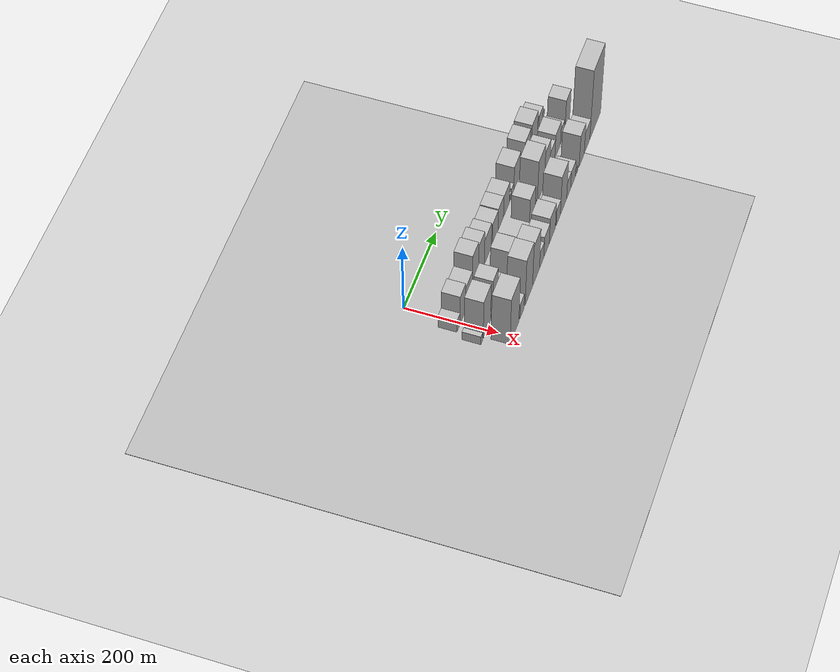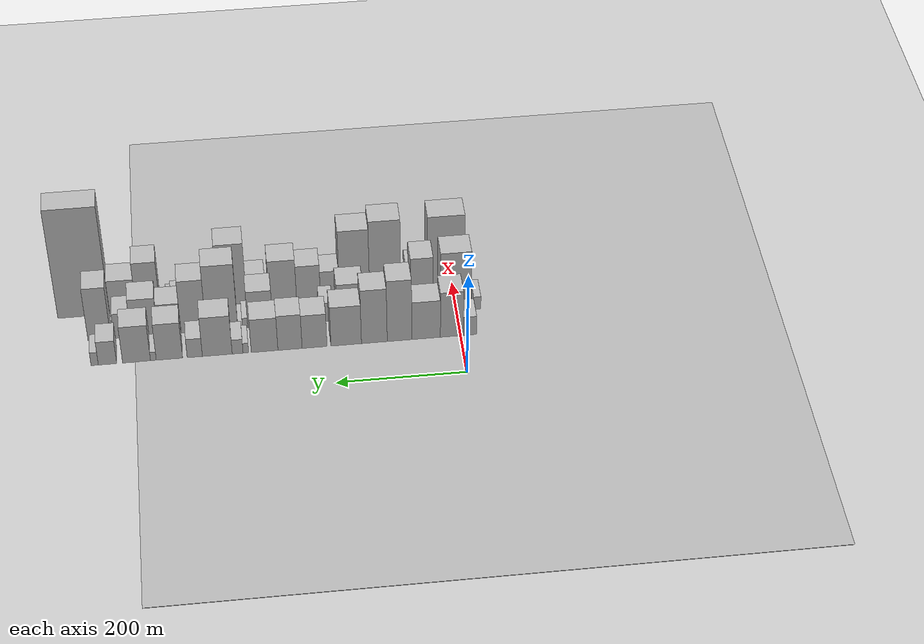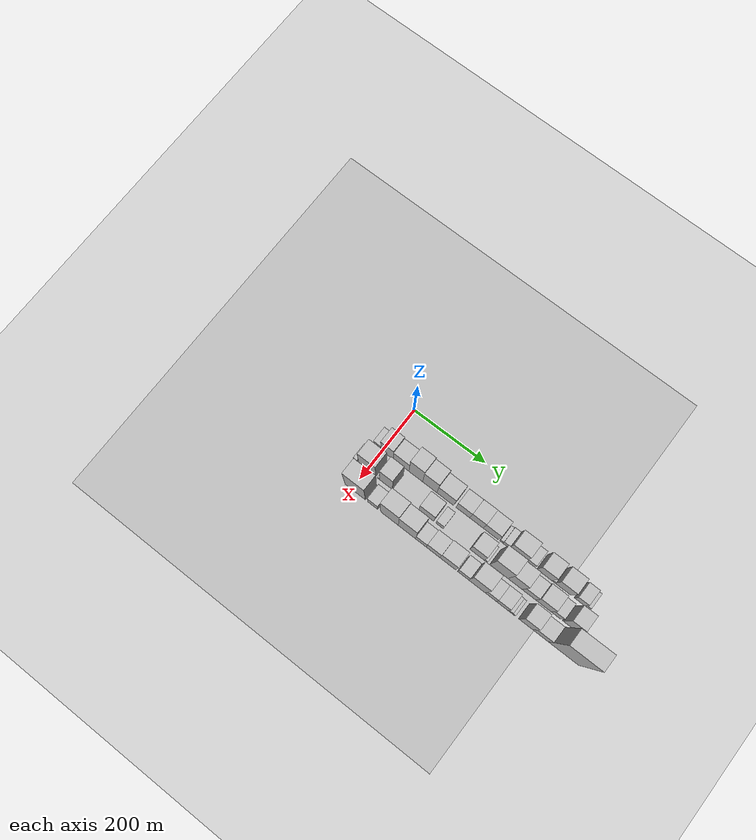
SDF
<sdf version="1.6">
 <world name="default">
  <include><name>ground_plane_1</name><uri>model://HANNAS_ground_plane</uri></include>
  <include>
   <name>ground_plane_2</name>
   <uri>model://HANNAS_ground_plane</uri>
   <pose>100 0 0  0 0 0</pose>
  </include>
  <model name="building_18">
   <static>1</static>
   <pose>100.0000 -13.8160 0 0.000000 0.000000 0.000000</pose>
   <link name="link">
    <pose>0 0 19.50 0 0 0</pose>
    <collision name="collision"><geometry><box><size>40.0000 20.5366 39.0000</size></box></geometry></collision>
    <visual name="visual">
     <cast_shadows>0</cast_shadows>
     <geometry><box><size>40.0000 20.5366 39.0000</size></box></geometry>
     <material>
      <script>
       <uri>model://HANNAS_wall/materials/scripts</uri>
       <uri>model://HANNAS_wall/materials/textures</uri>
       <name>vrc/HANNAS_wall</name>
      </script>
     </material>
    </visual>
   </link>
  </model>
  <model name="building_19">
   <static>1</static>
   <pose>100.0000 14.2060 0 0.000000 0.000000 0.000000</pose>
   <link name="link">
    <pose>0 0 46.50 0 0 0</pose>
    <collision name="collision"><geometry><box><size>40.0000 35.5074 93.0000</size></box></geometry></collision>
    <visual name="visual">
     <cast_shadows>0</cast_shadows>
     <geometry><box><size>40.0000 35.5074 93.0000</size></box></geometry>
     <material>
      <script>
       <uri>model://HANNAS_wall/materials/scripts</uri>
       <uri>model://HANNAS_wall/materials/textures</uri>
       <name>vrc/HANNAS_wall</name>
      </script>
     </material>
    </visual>
   </link>
  </model>
  <model name="building_20">
   <static>1</static>
   <pose>100.0000 53.9739 0 0.000000 0.000000 0.000000</pose>
   <link name="link">
    <pose>0 0 39.00 0 0 0</pose>
    <collision name="collision"><geometry><box><size>40.0000 44.0286 78.0000</size></box></geometry></collision>
    <visual name="visual">
     <cast_shadows>0</cast_shadows>
     <geometry><box><size>40.0000 44.0286 78.0000</size></box></geometry>
     <material>
      <script>
       <uri>model://HANNAS_wall/materials/scripts</uri>
       <uri>model://HANNAS_wall/materials/textures</uri>
       <name>vrc/HANNAS_wall</name>
      </script>
     </material>
    </visual>
   </link>
  </model>
  <model name="building_21">
   <static>1</static>
   <pose>100.0000 95.1085 0 0.000000 0.000000 0.000000</pose>
   <link name="link">
    <pose>0 0 63.00 0 0 0</pose>
    <collision name="collision"><geometry><box><size>40.0000 38.2406 126.0000</size></box></geometry></collision>
    <visual name="visual">
     <cast_shadows>0</cast_shadows>
     <geometry><box><size>40.0000 38.2406 126.0000</size></box></geometry>
     <material>
      <script>
       <uri>model://HANNAS_wall/materials/scripts</uri>
       <uri>model://HANNAS_wall/materials/textures</uri>
       <name>vrc/HANNAS_wall</name>
      </script>
     </material>
    </visual>
   </link>
  </model>
  <model name="building_22">
   <static>1</static>
   <pose>100.0000 134.1365 0 0.000000 0.000000 0.000000</pose>
   <link name="link">
    <pose>0 0 55.50 0 0 0</pose>
    <collision name="collision"><geometry><box><size>40.0000 39.8153 111.0000</size></box></geometry></collision>
    <visual name="visual">
     <cast_shadows>0</cast_shadows>
     <geometry><box><size>40.0000 39.8153 111.0000</size></box></geometry>
     <material>
      <script>
       <uri>model://HANNAS_wall/materials/scripts</uri>
       <uri>model://HANNAS_wall/materials/textures</uri>
       <name>vrc/HANNAS_wall</name>
      </script>
     </material>
    </visual>
   </link>
  </model>
  <model name="building_23">
   <static>1</static>
   <pose>100.0000 177.5344 0 0.000000 0.000000 0.000000</pose>
   <link name="link">
    <pose>0 0 40.50 0 0 0</pose>
    <collision name="collision"><geometry><box><size>40.0000 46.9805 81.0000</size></box></geometry></collision>
    <visual name="visual">
     <cast_shadows>0</cast_shadows>
     <geometry><box><size>40.0000 46.9805 81.0000</size></box></geometry>
     <material>
      <script>
       <uri>model://HANNAS_wall/materials/scripts</uri>
       <uri>model://HANNAS_wall/materials/textures</uri>
       <name>vrc/HANNAS_wall</name>
      </script>
     </material>
    </visual>
   </link>
  </model>
  <model name="building_24">
   <static>1</static>
   <pose>100.0000 226.1915 0 0.000000 0.000000 0.000000</pose>
   <link name="link">
    <pose>0 0 34.50 0 0 0</pose>
    <collision name="collision"><geometry><box><size>40.0000 38.3338 69.0000</size></box></geometry></collision>
    <visual name="visual">
     <cast_shadows>0</cast_shadows>
     <geometry><box><size>40.0000 38.3338 69.0000</size></box></geometry>
     <material>
      <script>
       <uri>model://HANNAS_wall/materials/scripts</uri>
       <uri>model://HANNAS_wall/materials/textures</uri>
       <name>vrc/HANNAS_wall</name>
      </script>
     </material>
    </visual>
   </link>
  </model>
  <model name="building_25">
   <static>1</static>
   <pose>100.0000 263.8950 0 0.000000 0.000000 0.000000</pose>
   <link name="link">
    <pose>0 0 36.00 0 0 0</pose>
    <collision name="collision"><geometry><box><size>40.0000 37.0732 72.0000</size></box></geometry></collision>
    <visual name="visual">
     <cast_shadows>0</cast_shadows>
     <geometry><box><size>40.0000 37.0732 72.0000</size></box></geometry>
     <material>
      <script>
       <uri>model://HANNAS_wall/materials/scripts</uri>
       <uri>model://HANNAS_wall/materials/textures</uri>
       <name>vrc/HANNAS_wall</name>
      </script>
     </material>
    </visual>
   </link>
  </model>
  <model name="building_26">
   <static>1</static>
   <pose>100.0000 302.8629 0 0.000000 0.000000 0.000000</pose>
   <link name="link">
    <pose>0 0 34.50 0 0 0</pose>
    <collision name="collision"><geometry><box><size>40.0000 40.8625 69.0000</size></box></geometry></collision>
    <visual name="visual">
     <cast_shadows>0</cast_shadows>
     <geometry><box><size>40.0000 40.8625 69.0000</size></box></geometry>
     <material>
      <script>
       <uri>model://HANNAS_wall/materials/scripts</uri>
       <uri>model://HANNAS_wall/materials/textures</uri>
       <name>vrc/HANNAS_wall</name>
      </script>
     </material>
    </visual>
   </link>
  </model>
  <model name="building_27">
   <static>1</static>
   <pose>100.0000 331.5423 0 0.000000 0.000000 0.000000</pose>
   <link name="link">
    <pose>0 0 10.50 0 0 0</pose>
    <collision name="collision"><geometry><box><size>40.0000 8.4963 21.0000</size></box></geometry></collision>
    <visual name="visual">
     <cast_shadows>0</cast_shadows>
     <geometry><box><size>40.0000 8.4963 21.0000</size></box></geometry>
     <material>
      <script>
       <uri>model://HANNAS_wall/materials/scripts</uri>
       <uri>model://HANNAS_wall/materials/textures</uri>
       <name>vrc/HANNAS_wall</name>
      </script>
     </material>
    </visual>
   </link>
  </model>
  <model name="building_28">
   <static>1</static>
   <pose>100.0000 344.0864 0 0.000000 0.000000 0.000000</pose>
   <link name="link">
    <pose>0 0 15.00 0 0 0</pose>
    <collision name="collision"><geometry><box><size>40.0000 16.5918 30.0000</size></box></geometry></collision>
    <visual name="visual">
     <cast_shadows>0</cast_shadows>
     <geometry><box><size>40.0000 16.5918 30.0000</size></box></geometry>
     <material>
      <script>
       <uri>model://HANNAS_wall/materials/scripts</uri>
       <uri>model://HANNAS_wall/materials/textures</uri>
       <name>vrc/HANNAS_wall</name>
      </script>
     </material>
    </visual>
   </link>
  </model>
  <model name="building_29">
   <static>1</static>
   <pose>100.0000 375.1154 0 0.000000 0.000000 0.000000</pose>
   <link name="link">
    <pose>0 0 40.50 0 0 0</pose>
    <collision name="collision"><geometry><box><size>40.0000 45.4663 81.0000</size></box></geometry></collision>
    <visual name="visual">
     <cast_shadows>0</cast_shadows>
     <geometry><box><size>40.0000 45.4663 81.0000</size></box></geometry>
     <material>
      <script>
       <uri>model://HANNAS_wall/materials/scripts</uri>
       <uri>model://HANNAS_wall/materials/textures</uri>
       <name>vrc/HANNAS_wall</name>
      </script>
     </material>
    </visual>
   </link>
  </model>
  <model name="building_30">
   <static>1</static>
   <pose>100.0000 409.4259 0 0.000000 0.000000 0.000000</pose>
   <link name="link">
    <pose>0 0 19.50 0 0 0</pose>
    <collision name="collision"><geometry><box><size>40.0000 23.1548 39.0000</size></box></geometry></collision>
    <visual name="visual">
     <cast_shadows>0</cast_shadows>
     <geometry><box><size>40.0000 23.1548 39.0000</size></box></geometry>
     <material>
      <script>
       <uri>model://HANNAS_wall/materials/scripts</uri>
       <uri>model://HANNAS_wall/materials/textures</uri>
       <name>vrc/HANNAS_wall</name>
      </script>
     </material>
    </visual>
   </link>
  </model>
  <model name="building_31">
   <static>1</static>
   <pose>100.0000 448.0547 0 0.000000 0.000000 0.000000</pose>
   <link name="link">
    <pose>0 0 37.50 0 0 0</pose>
    <collision name="collision"><geometry><box><size>40.0000 40.1027 75.0000</size></box></geometry></collision>
    <visual name="visual">
     <cast_shadows>0</cast_shadows>
     <geometry><box><size>40.0000 40.1027 75.0000</size></box></geometry>
     <material>
      <script>
       <uri>model://HANNAS_wall/materials/scripts</uri>
       <uri>model://HANNAS_wall/materials/textures</uri>
       <name>vrc/HANNAS_wall</name>
      </script>
     </material>
    </visual>
   </link>
  </model>
  <model name="building_32">
   <static>1</static>
   <pose>100.0000 472.4805 0 0.000000 0.000000 0.000000</pose>
   <link name="link">
    <pose>0 0 9.00 0 0 0</pose>
    <collision name="collision"><geometry><box><size>40.0000 8.7489 18.0000</size></box></geometry></collision>
    <visual name="visual">
     <cast_shadows>0</cast_shadows>
     <geometry><box><size>40.0000 8.7489 18.0000</size></box></geometry>
     <material>
      <script>
       <uri>model://HANNAS_wall/materials/scripts</uri>
       <uri>model://HANNAS_wall/materials/textures</uri>
       <name>vrc/HANNAS_wall</name>
      </script>
     </material>
    </visual>
   </link>
  </model>
  <model name="building_33">
   <static>1</static>
   <pose>100.0000 497.9896 0 0.000000 0.000000 0.000000</pose>
   <link name="link">
    <pose>0 0 37.50 0 0 0</pose>
    <collision name="collision"><geometry><box><size>40.0000 42.2691 75.0000</size></box></geometry></collision>
    <visual name="visual">
     <cast_shadows>0</cast_shadows>
     <geometry><box><size>40.0000 42.2691 75.0000</size></box></geometry>
     <material>
      <script>
       <uri>model://HANNAS_wall/materials/scripts</uri>
       <uri>model://HANNAS_wall/materials/textures</uri>
       <name>vrc/HANNAS_wall</name>
      </script>
     </material>
    </visual>
   </link>
  </model>
  <model name="building_34">
   <static>1</static>
   <pose>100.0000 542.0247 0 0.000000 0.000000 0.000000</pose>
   <link name="link">
    <pose>0 0 24.00 0 0 0</pose>
    <collision name="collision"><geometry><box><size>40.0000 27.8012 48.0000</size></box></geometry></collision>
    <visual name="visual">
     <cast_shadows>0</cast_shadows>
     <geometry><box><size>40.0000 27.8012 48.0000</size></box></geometry>
     <material>
      <script>
       <uri>model://HANNAS_wall/materials/scripts</uri>
       <uri>model://HANNAS_wall/materials/textures</uri>
       <name>vrc/HANNAS_wall</name>
      </script>
     </material>
    </visual>
   </link>
  </model>
  <model name="building_35">
   <static>1</static>
   <pose>100.0000 561.4147 0 0.000000 0.000000 0.000000</pose>
   <link name="link">
    <pose>0 0 13.50 0 0 0</pose>
    <collision name="collision"><geometry><box><size>40.0000 10.9788 27.0000</size></box></geometry></collision>
    <visual name="visual">
     <cast_shadows>0</cast_shadows>
     <geometry><box><size>40.0000 10.9788 27.0000</size></box></geometry>
     <material>
      <script>
       <uri>model://HANNAS_wall/materials/scripts</uri>
       <uri>model://HANNAS_wall/materials/textures</uri>
       <name>vrc/HANNAS_wall</name>
      </script>
     </material>
    </visual>
   </link>
  </model>
  <model name="building_52">
   <static>1</static>
   <pose>155.0000 -32.2822 0 0.000000 0.000000 0.000000</pose>
   <link name="link">
    <pose>0 0 13.50 0 0 0</pose>
    <collision name="collision"><geometry><box><size>40.0000 11.2220 27.0000</size></box></geometry></collision>
    <visual name="visual">
     <cast_shadows>0</cast_shadows>
     <geometry><box><size>40.0000 11.2220 27.0000</size></box></geometry>
     <material>
      <script>
       <uri>model://HANNAS_wall/materials/scripts</uri>
       <uri>model://HANNAS_wall/materials/textures</uri>
       <name>vrc/HANNAS_wall</name>
      </script>
     </material>
    </visual>
   </link>
  </model>
  <model name="building_53">
   <static>1</static>
   <pose>155.0000 1.2587 0 0.000000 0.000000 0.000000</pose>
   <link name="link">
    <pose>0 0 61.50 0 0 0</pose>
    <collision name="collision"><geometry><box><size>40.0000 47.8598 123.0000</size></box></geometry></collision>
    <visual name="visual">
     <cast_shadows>0</cast_shadows>
     <geometry><box><size>40.0000 47.8598 123.0000</size></box></geometry>
     <material>
      <script>
       <uri>model://HANNAS_wall/materials/scripts</uri>
       <uri>model://HANNAS_wall/materials/textures</uri>
       <name>vrc/HANNAS_wall</name>
      </script>
     </material>
    </visual>
   </link>
  </model>
  <model name="building_54">
   <static>1</static>
   <pose>155.0000 33.4385 0 0.000000 0.000000 0.000000</pose>
   <link name="link">
    <pose>0 0 7.50 0 0 0</pose>
    <collision name="collision"><geometry><box><size>40.0000 6.4998 15.0000</size></box></geometry></collision>
    <visual name="visual">
     <cast_shadows>0</cast_shadows>
     <geometry><box><size>40.0000 6.4998 15.0000</size></box></geometry>
     <material>
      <script>
       <uri>model://HANNAS_wall/materials/scripts</uri>
       <uri>model://HANNAS_wall/materials/textures</uri>
       <name>vrc/HANNAS_wall</name>
      </script>
     </material>
    </visual>
   </link>
  </model>
  <model name="building_55">
   <static>1</static>
   <pose>155.0000 54.2656 0 0.000000 0.000000 0.000000</pose>
   <link name="link">
    <pose>0 0 58.50 0 0 0</pose>
    <collision name="collision"><geometry><box><size>40.0000 35.1544 117.0000</size></box></geometry></collision>
    <visual name="visual">
     <cast_shadows>0</cast_shadows>
     <geometry><box><size>40.0000 35.1544 117.0000</size></box></geometry>
     <material>
      <script>
       <uri>model://HANNAS_wall/materials/scripts</uri>
       <uri>model://HANNAS_wall/materials/textures</uri>
       <name>vrc/HANNAS_wall</name>
      </script>
     </material>
    </visual>
   </link>
  </model>
  <model name="building_56">
   <static>1</static>
   <pose>155.0000 166.3739 0 0.000000 0.000000 0.000000</pose>
   <link name="link">
    <pose>0 0 37.50 0 0 0</pose>
    <collision name="collision"><geometry><box><size>40.0000 41.0208 75.0000</size></box></geometry></collision>
    <visual name="visual">
     <cast_shadows>0</cast_shadows>
     <geometry><box><size>40.0000 41.0208 75.0000</size></box></geometry>
     <material>
      <script>
       <uri>model://HANNAS_wall/materials/scripts</uri>
       <uri>model://HANNAS_wall/materials/textures</uri>
       <name>vrc/HANNAS_wall</name>
      </script>
     </material>
    </visual>
   </link>
  </model>
  <model name="building_57">
   <static>1</static>
   <pose>155.0000 203.3350 0 0.000000 0.000000 0.000000</pose>
   <link name="link">
    <pose>0 0 19.50 0 0 0</pose>
    <collision name="collision"><geometry><box><size>40.0000 20.9014 39.0000</size></box></geometry></collision>
    <visual name="visual">
     <cast_shadows>0</cast_shadows>
     <geometry><box><size>40.0000 20.9014 39.0000</size></box></geometry>
     <material>
      <script>
       <uri>model://HANNAS_wall/materials/scripts</uri>
       <uri>model://HANNAS_wall/materials/textures</uri>
       <name>vrc/HANNAS_wall</name>
      </script>
     </material>
    </visual>
   </link>
  </model>
  <model name="building_58">
   <static>1</static>
   <pose>155.0000 306.0167 0 0.000000 0.000000 0.000000</pose>
   <link name="link">
    <pose>0 0 37.50 0 0 0</pose>
    <collision name="collision"><geometry><box><size>40.0000 38.8206 75.0000</size></box></geometry></collision>
    <visual name="visual">
     <cast_shadows>0</cast_shadows>
     <geometry><box><size>40.0000 38.8206 75.0000</size></box></geometry>
     <material>
      <script>
       <uri>model://HANNAS_wall/materials/scripts</uri>
       <uri>model://HANNAS_wall/materials/textures</uri>
       <name>vrc/HANNAS_wall</name>
      </script>
     </material>
    </visual>
   </link>
  </model>
  <model name="building_59">
   <static>1</static>
   <pose>155.0000 329.6400 0 0.000000 0.000000 0.000000</pose>
   <link name="link">
    <pose>0 0 10.50 0 0 0</pose>
    <collision name="collision"><geometry><box><size>40.0000 8.4259 21.0000</size></box></geometry></collision>
    <visual name="visual">
     <cast_shadows>0</cast_shadows>
     <geometry><box><size>40.0000 8.4259 21.0000</size></box></geometry>
     <material>
      <script>
       <uri>model://HANNAS_wall/materials/scripts</uri>
       <uri>model://HANNAS_wall/materials/textures</uri>
       <name>vrc/HANNAS_wall</name>
      </script>
     </material>
    </visual>
   </link>
  </model>
  <model name="building_60">
   <static>1</static>
   <pose>155.0000 365.2736 0 0.000000 0.000000 0.000000</pose>
   <link name="link">
    <pose>0 0 67.50 0 0 0</pose>
    <collision name="collision"><geometry><box><size>40.0000 48.8414 135.0000</size></box></geometry></collision>
    <visual name="visual">
     <cast_shadows>0</cast_shadows>
     <geometry><box><size>40.0000 48.8414 135.0000</size></box></geometry>
     <material>
      <script>
       <uri>model://HANNAS_wall/materials/scripts</uri>
       <uri>model://HANNAS_wall/materials/textures</uri>
       <name>vrc/HANNAS_wall</name>
      </script>
     </material>
    </visual>
   </link>
  </model>
  <model name="building_61">
   <static>1</static>
   <pose>155.0000 408.9498 0 0.000000 0.000000 0.000000</pose>
   <link name="link">
    <pose>0 0 54.00 0 0 0</pose>
    <collision name="collision"><geometry><box><size>40.0000 38.5110 108.0000</size></box></geometry></collision>
    <visual name="visual">
     <cast_shadows>0</cast_shadows>
     <geometry><box><size>40.0000 38.5110 108.0000</size></box></geometry>
     <material>
      <script>
       <uri>model://HANNAS_wall/materials/scripts</uri>
       <uri>model://HANNAS_wall/materials/textures</uri>
       <name>vrc/HANNAS_wall</name>
      </script>
     </material>
    </visual>
   </link>
  </model>
  <model name="building_62">
   <static>1</static>
   <pose>155.0000 446.1631 0 0.000000 0.000000 0.000000</pose>
   <link name="link">
    <pose>0 0 31.50 0 0 0</pose>
    <collision name="collision"><geometry><box><size>40.0000 35.9156 63.0000</size></box></geometry></collision>
    <visual name="visual">
     <cast_shadows>0</cast_shadows>
     <geometry><box><size>40.0000 35.9156 63.0000</size></box></geometry>
     <material>
      <script>
       <uri>model://HANNAS_wall/materials/scripts</uri>
       <uri>model://HANNAS_wall/materials/textures</uri>
       <name>vrc/HANNAS_wall</name>
      </script>
     </material>
    </visual>
   </link>
  </model>
  <model name="building_63">
   <static>1</static>
   <pose>155.0000 484.7141 0 0.000000 0.000000 0.000000</pose>
   <link name="link">
    <pose>0 0 39.00 0 0 0</pose>
    <collision name="collision"><geometry><box><size>40.0000 41.1862 78.0000</size></box></geometry></collision>
    <visual name="visual">
     <cast_shadows>0</cast_shadows>
     <geometry><box><size>40.0000 41.1862 78.0000</size></box></geometry>
     <material>
      <script>
       <uri>model://HANNAS_wall/materials/scripts</uri>
       <uri>model://HANNAS_wall/materials/textures</uri>
       <name>vrc/HANNAS_wall</name>
      </script>
     </material>
    </visual>
   </link>
  </model>
  <model name="building_64">
   <static>1</static>
   <pose>155.0000 518.2931 0 0.000000 0.000000 0.000000</pose>
   <link name="link">
    <pose>0 0 25.50 0 0 0</pose>
    <collision name="collision"><geometry><box><size>40.0000 25.9717 51.0000</size></box></geometry></collision>
    <visual name="visual">
     <cast_shadows>0</cast_shadows>
     <geometry><box><size>40.0000 25.9717 51.0000</size></box></geometry>
     <material>
      <script>
       <uri>model://HANNAS_wall/materials/scripts</uri>
       <uri>model://HANNAS_wall/materials/textures</uri>
       <name>vrc/HANNAS_wall</name>
      </script>
     </material>
    </visual>
   </link>
  </model>
  <model name="building_65">
   <static>1</static>
   <pose>155.0000 553.7557 0 0.000000 0.000000 0.000000</pose>
   <link name="link">
    <pose>0 0 54.00 0 0 0</pose>
    <collision name="collision"><geometry><box><size>40.0000 34.9536 108.0000</size></box></geometry></collision>
    <visual name="visual">
     <cast_shadows>0</cast_shadows>
     <geometry><box><size>40.0000 34.9536 108.0000</size></box></geometry>
     <material>
      <script>
       <uri>model://HANNAS_wall/materials/scripts</uri>
       <uri>model://HANNAS_wall/materials/textures</uri>
       <name>vrc/HANNAS_wall</name>
      </script>
     </material>
    </visual>
   </link>
  </model>
  <model name="building_82">
   <static>1</static>
   <pose>210.0000 10.2587 0 0.000000 0.000000 0.000000</pose>
   <link name="link">
    <pose>0 0 75.00 0 0 0</pose>
    <collision name="collision"><geometry><box><size>40.0000 58.0136 150.0000</size></box></geometry></collision>
    <visual name="visual">
     <cast_shadows>0</cast_shadows>
     <geometry><box><size>40.0000 58.0136 150.0000</size></box></geometry>
     <material>
      <script>
       <uri>model://HANNAS_wall/materials/scripts</uri>
       <uri>model://HANNAS_wall/materials/textures</uri>
       <name>vrc/HANNAS_wall</name>
      </script>
     </material>
    </visual>
   </link>
  </model>
  <model name="building_83">
   <static>1</static>
   <pose>210.0000 59.4654 0 0.000000 0.000000 0.000000</pose>
   <link name="link">
    <pose>0 0 25.50 0 0 0</pose>
    <collision name="collision"><geometry><box><size>40.0000 28.3996 51.0000</size></box></geometry></collision>
    <visual name="visual">
     <cast_shadows>0</cast_shadows>
     <geometry><box><size>40.0000 28.3996 51.0000</size></box></geometry>
     <material>
      <script>
       <uri>model://HANNAS_wall/materials/scripts</uri>
       <uri>model://HANNAS_wall/materials/textures</uri>
       <name>vrc/HANNAS_wall</name>
      </script>
     </material>
    </visual>
   </link>
  </model>
  <model name="building_84">
   <static>1</static>
   <pose>210.0000 106.3405 0 0.000000 0.000000 0.000000</pose>
   <link name="link">
    <pose>0 0 75.00 0 0 0</pose>
    <collision name="collision"><geometry><box><size>40.0000 49.3507 150.0000</size></box></geometry></collision>
    <visual name="visual">
     <cast_shadows>0</cast_shadows>
     <geometry><box><size>40.0000 49.3507 150.0000</size></box></geometry>
     <material>
      <script>
       <uri>model://HANNAS_wall/materials/scripts</uri>
       <uri>model://HANNAS_wall/materials/textures</uri>
       <name>vrc/HANNAS_wall</name>
      </script>
     </material>
    </visual>
   </link>
  </model>
  <model name="building_85">
   <static>1</static>
   <pose>210.0000 154.8800 0 0.000000 0.000000 0.000000</pose>
   <link name="link">
    <pose>0 0 67.50 0 0 0</pose>
    <collision name="collision"><geometry><box><size>40.0000 47.7283 135.0000</size></box></geometry></collision>
    <visual name="visual">
     <cast_shadows>0</cast_shadows>
     <geometry><box><size>40.0000 47.7283 135.0000</size></box></geometry>
     <material>
      <script>
       <uri>model://HANNAS_wall/materials/scripts</uri>
       <uri>model://HANNAS_wall/materials/textures</uri>
       <name>vrc/HANNAS_wall</name>
      </script>
     </material>
    </visual>
   </link>
  </model>
  <model name="building_86">
   <static>1</static>
   <pose>210.0000 193.6243 0 0.000000 0.000000 0.000000</pose>
   <link name="link">
    <pose>0 0 27.00 0 0 0</pose>
    <collision name="collision"><geometry><box><size>40.0000 29.7602 54.0000</size></box></geometry></collision>
    <visual name="visual">
     <cast_shadows>0</cast_shadows>
     <geometry><box><size>40.0000 29.7602 54.0000</size></box></geometry>
     <material>
      <script>
       <uri>model://HANNAS_wall/materials/scripts</uri>
       <uri>model://HANNAS_wall/materials/textures</uri>
       <name>vrc/HANNAS_wall</name>
      </script>
     </material>
    </visual>
   </link>
  </model>
  <model name="building_87">
   <static>1</static>
   <pose>210.0000 227.3108 0 0.000000 0.000000 0.000000</pose>
   <link name="link">
    <pose>0 0 34.50 0 0 0</pose>
    <collision name="collision"><geometry><box><size>40.0000 37.6129 69.0000</size></box></geometry></collision>
    <visual name="visual">
     <cast_shadows>0</cast_shadows>
     <geometry><box><size>40.0000 37.6129 69.0000</size></box></geometry>
     <material>
      <script>
       <uri>model://HANNAS_wall/materials/scripts</uri>
       <uri>model://HANNAS_wall/materials/textures</uri>
       <name>vrc/HANNAS_wall</name>
      </script>
     </material>
    </visual>
   </link>
  </model>
  <model name="building_88">
   <static>1</static>
   <pose>210.0000 267.5864 0 0.000000 0.000000 0.000000</pose>
   <link name="link">
    <pose>0 0 42.00 0 0 0</pose>
    <collision name="collision"><geometry><box><size>40.0000 42.9384 84.0000</size></box></geometry></collision>
    <visual name="visual">
     <cast_shadows>0</cast_shadows>
     <geometry><box><size>40.0000 42.9384 84.0000</size></box></geometry>
     <material>
      <script>
       <uri>model://HANNAS_wall/materials/scripts</uri>
       <uri>model://HANNAS_wall/materials/textures</uri>
       <name>vrc/HANNAS_wall</name>
      </script>
     </material>
    </visual>
   </link>
  </model>
  <model name="building_89">
   <static>1</static>
   <pose>210.0000 309.0358 0 0.000000 0.000000 0.000000</pose>
   <link name="link">
    <pose>0 0 27.00 0 0 0</pose>
    <collision name="collision"><geometry><box><size>40.0000 29.9604 54.0000</size></box></geometry></collision>
    <visual name="visual">
     <cast_shadows>0</cast_shadows>
     <geometry><box><size>40.0000 29.9604 54.0000</size></box></geometry>
     <material>
      <script>
       <uri>model://HANNAS_wall/materials/scripts</uri>
       <uri>model://HANNAS_wall/materials/textures</uri>
       <name>vrc/HANNAS_wall</name>
      </script>
     </material>
    </visual>
   </link>
  </model>
  <model name="building_90">
   <static>1</static>
   <pose>210.0000 346.4738 0 0.000000 0.000000 0.000000</pose>
   <link name="link">
    <pose>0 0 63.00 0 0 0</pose>
    <collision name="collision"><geometry><box><size>40.0000 44.9156 126.0000</size></box></geometry></collision>
    <visual name="visual">
     <cast_shadows>0</cast_shadows>
     <geometry><box><size>40.0000 44.9156 126.0000</size></box></geometry>
     <material>
      <script>
       <uri>model://HANNAS_wall/materials/scripts</uri>
       <uri>model://HANNAS_wall/materials/textures</uri>
       <name>vrc/HANNAS_wall</name>
      </script>
     </material>
    </visual>
   </link>
  </model>
  <model name="building_91">
   <static>1</static>
   <pose>210.0000 383.3757 0 0.000000 0.000000 0.000000</pose>
   <link name="link">
    <pose>0 0 28.50 0 0 0</pose>
    <collision name="collision"><geometry><box><size>40.0000 28.8881 57.0000</size></box></geometry></collision>
    <visual name="visual">
     <cast_shadows>0</cast_shadows>
     <geometry><box><size>40.0000 28.8881 57.0000</size></box></geometry>
     <material>
      <script>
       <uri>model://HANNAS_wall/materials/scripts</uri>
       <uri>model://HANNAS_wall/materials/textures</uri>
       <name>vrc/HANNAS_wall</name>
      </script>
     </material>
    </visual>
   </link>
  </model>
  <model name="building_92">
   <static>1</static>
   <pose>210.0000 414.0030 0 0.000000 0.000000 0.000000</pose>
   <link name="link">
    <pose>0 0 28.50 0 0 0</pose>
    <collision name="collision"><geometry><box><size>40.0000 32.3665 57.0000</size></box></geometry></collision>
    <visual name="visual">
     <cast_shadows>0</cast_shadows>
     <geometry><box><size>40.0000 32.3665 57.0000</size></box></geometry>
     <material>
      <script>
       <uri>model://HANNAS_wall/materials/scripts</uri>
       <uri>model://HANNAS_wall/materials/textures</uri>
       <name>vrc/HANNAS_wall</name>
      </script>
     </material>
    </visual>
   </link>
  </model>
  <model name="building_93">
   <static>1</static>
   <pose>210.0000 435.8420 0 0.000000 0.000000 0.000000</pose>
   <link name="link">
    <pose>0 0 12.00 0 0 0</pose>
    <collision name="collision"><geometry><box><size>40.0000 11.3116 24.0000</size></box></geometry></collision>
    <visual name="visual">
     <cast_shadows>0</cast_shadows>
     <geometry><box><size>40.0000 11.3116 24.0000</size></box></geometry>
     <material>
      <script>
       <uri>model://HANNAS_wall/materials/scripts</uri>
       <uri>model://HANNAS_wall/materials/textures</uri>
       <name>vrc/HANNAS_wall</name>
      </script>
     </material>
    </visual>
   </link>
  </model>
  <model name="building_94">
   <static>1</static>
   <pose>210.0000 445.1787 0 0.000000 0.000000 0.000000</pose>
   <link name="link">
    <pose>0 0 9.00 0 0 0</pose>
    <collision name="collision"><geometry><box><size>40.0000 7.3617 18.0000</size></box></geometry></collision>
    <visual name="visual">
     <cast_shadows>0</cast_shadows>
     <geometry><box><size>40.0000 7.3617 18.0000</size></box></geometry>
     <material>
      <script>
       <uri>model://HANNAS_wall/materials/scripts</uri>
       <uri>model://HANNAS_wall/materials/textures</uri>
       <name>vrc/HANNAS_wall</name>
      </script>
     </material>
    </visual>
   </link>
  </model>
  <model name="building_95">
   <static>1</static>
   <pose>210.0000 477.4553 0 0.000000 0.000000 0.000000</pose>
   <link name="link">
    <pose>0 0 51.00 0 0 0</pose>
    <collision name="collision"><geometry><box><size>40.0000 37.1916 102.0000</size></box></geometry></collision>
    <visual name="visual">
     <cast_shadows>0</cast_shadows>
     <geometry><box><size>40.0000 37.1916 102.0000</size></box></geometry>
     <material>
      <script>
       <uri>model://HANNAS_wall/materials/scripts</uri>
       <uri>model://HANNAS_wall/materials/textures</uri>
       <name>vrc/HANNAS_wall</name>
      </script>
     </material>
    </visual>
   </link>
  </model>
  <model name="building_96">
   <static>1</static>
   <pose>210.0000 516.6546 0 0.000000 0.000000 0.000000</pose>
   <link name="link">
    <pose>0 0 34.50 0 0 0</pose>
    <collision name="collision"><geometry><box><size>40.0000 41.2068 69.0000</size></box></geometry></collision>
    <visual name="visual">
     <cast_shadows>0</cast_shadows>
     <geometry><box><size>40.0000 41.2068 69.0000</size></box></geometry>
     <material>
      <script>
       <uri>model://HANNAS_wall/materials/scripts</uri>
       <uri>model://HANNAS_wall/materials/textures</uri>
       <name>vrc/HANNAS_wall</name>
      </script>
     </material>
    </visual>
   </link>
  </model>
  <model name="building_97">
   <static>1</static>
   <pose>210.0000 577.3592 0 0.000000 0.000000 0.000000</pose>
   <link name="link">
    <pose>0 0 111.00 0 0 0</pose>
    <collision name="collision"><geometry><box><size>40.0000 80.2025 222.0000</size></box></geometry></collision>
    <visual name="visual">
     <cast_shadows>0</cast_shadows>
     <geometry><box><size>40.0000 80.2025 222.0000</size></box></geometry>
     <material>
      <script>
       <uri>model://HANNAS_wall/materials/scripts</uri>
       <uri>model://HANNAS_wall/materials/textures</uri>
       <name>vrc/HANNAS_wall</name>
      </script>
     </material>
    </visual>
   </link>
  </model>
 </world>
</sdf>
